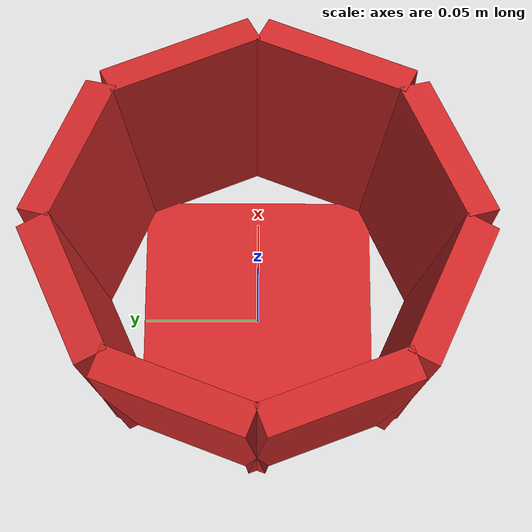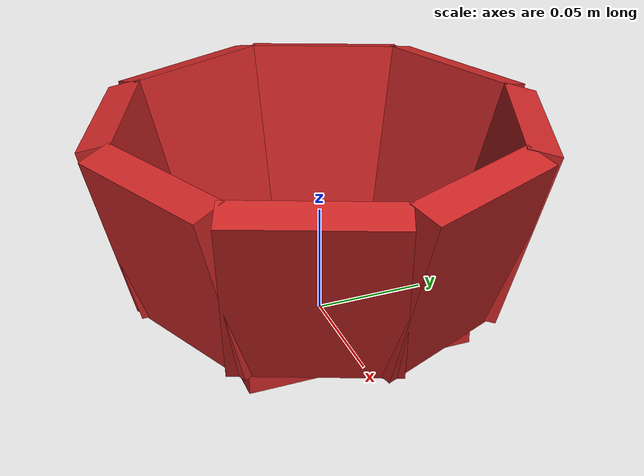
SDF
<?xml version="1.0" ?>
<sdf version="1.5">
  <model name="bowl_high">
    <link name="link">
      <inertial>
        <pose>0 0 0.035 0 0 0</pose>
        <mass>0.1</mass>
        <inertia>
          <ixx>0.000250308</ixx>
          <ixy>0.0</ixy>
          <ixz>0.0</ixz>
          <iyy>0.000250308</iyy>
          <iyz>0.0</iyz>
          <izz>0.0004802</izz>
        </inertia>
      </inertial>
      <collision name="side1">
        <pose>0.0301  0.07183 0.05588 -0.265282222222222 0 -0.3926875</pose>
        <geometry>
          <box><size>0.07 0.015 0.08</size></box>
        </geometry>
      </collision>
      <collision name="side2">
        <pose>-0.03 0.0717  0.05588 -0.265282 0 0.3926875</pose>
        <geometry>
          <box><size>0.07 0.015 0.08</size></box>
        </geometry>
      </collision>
      <collision name="side3">
        <pose>-0.0717 0.03  0.05588 -0.265282 0 1.1780625</pose>
        <geometry>
          <box><size>0.07 0.015 0.08</size></box>
        </geometry>
      </collision>
      <collision name="side4">
        <pose>-0.0717 -0.03 0.05588 -0.265282 0 1.9634375</pose>
        <geometry>
          <box><size>0.07 0.015 0.08</size></box>
        </geometry>
      </collision>
      <collision name="side5">
        <pose>-0.03 -0.0717 0.05588 -0.265282 0 2.7488125</pose>
        <geometry>
          <box><size>0.07 0.015 0.08</size></box>
        </geometry>
      </collision>
      <collision name="side6">
        <pose>0.03  -0.0717 0.05588 -0.265282 0 3.5516402</pose>
        <geometry>
          <box><size>0.07 0.015 0.08</size></box>
        </geometry>
      </collision>
      <collision name="side7">
        <pose>0.0717  -0.03 0.05588 -0.265282 0 4.3195625</pose>
        <geometry>
          <box><size>0.07 0.015 0.08</size></box>
        </geometry>
      </collision>
      <collision name="side8">
        <pose>0.0717  0.03  0.05588 -0.265282 0 5.1223902</pose>
        <geometry>
          <box><size>0.07 0.015 0.08</size></box>
        </geometry>
      </collision>
      <collision name="bottom">
        <pose>0  0  0.01 0 0 0</pose>
        <geometry>
          <box><size>0.1 0.1 0.02</size></box>
        </geometry>
      </collision>
      <visual name="side1">
        <pose>0.0301  0.07183 0.05588 -0.265282222222222 0 -0.3926875</pose>
        <geometry>
          <box><size>0.07 0.015 0.08</size></box>
        </geometry>
        <material>
          <script>
            <uri>file://media/materials/scripts/gazebo.material</uri>
            <name>Gazebo/Red</name>
          </script>
        </material>
      </visual>
      <visual name="side2">
        <pose>-0.03 0.0717  0.05588 -0.265282 0 0.3926875</pose>
        <geometry>
          <box><size>0.07 0.015 0.08</size></box>
        </geometry>
        <material>
          <script>
            <uri>file://media/materials/scripts/gazebo.material</uri>
            <name>Gazebo/Red</name>
          </script>
        </material>
      </visual>
      <visual name="side3">
        <pose>-0.0717 0.03  0.05588 -0.265282 0 1.1780625</pose>
        <geometry>
          <box><size>0.07 0.015 0.08</size></box>
        </geometry>
        <material>
          <script>
            <uri>file://media/materials/scripts/gazebo.material</uri>
            <name>Gazebo/Red</name>
          </script>
        </material>
      </visual>
      <visual name="side4">
        <pose>-0.0717 -0.03 0.05588 -0.265282 0 1.9634375</pose>
        <geometry>
          <box><size>0.07 0.015 0.08</size></box>
        </geometry>
        <material>
          <script>
            <uri>file://media/materials/scripts/gazebo.material</uri>
            <name>Gazebo/Red</name>
          </script>
        </material>
      </visual>
      <visual name="side5">
        <pose>-0.03 -0.0717 0.05588 -0.265282 0 2.7488125</pose>
        <geometry>
          <box><size>0.07 0.015 0.08</size></box>
        </geometry>
        <material>
          <script>
            <uri>file://media/materials/scripts/gazebo.material</uri>
            <name>Gazebo/Red</name>
          </script>
        </material>
      </visual>
      <visual name="side6">
        <pose>0.03  -0.0717 0.05588 -0.265282 0 3.5516402</pose>
        <geometry>
          <box><size>0.07 0.015 0.08</size></box>
        </geometry>
        <material>
          <script>
            <uri>file://media/materials/scripts/gazebo.material</uri>
            <name>Gazebo/Red</name>
          </script>
        </material>
      </visual>
      <visual name="side7">
        <pose>0.0717  -0.03 0.05588 -0.265282 0 4.3195625</pose>
        <geometry>
          <box><size>0.07 0.015 0.08</size></box>
        </geometry>
        <material>
          <script>
            <uri>file://media/materials/scripts/gazebo.material</uri>
            <name>Gazebo/Red</name>
          </script>
        </material>
      </visual>
      <visual name="side8">
        <pose>0.0717  0.03  0.05588 -0.265282 0 5.1223902</pose>
        <geometry>
          <box><size>0.07 0.015 0.08</size></box>
        </geometry>
        <material>
          <script>
            <uri>file://media/materials/scripts/gazebo.material</uri>
            <name>Gazebo/Red</name>
          </script>
        </material>
      </visual>
      <visual name="bottom">
        <pose>0  0  0.01 0 0 0</pose>
        <geometry>
          <box><size>0.1 0.1 0.02</size></box>
        </geometry>
        <material>
          <script>
            <uri>file://media/materials/scripts/gazebo.material</uri>
            <name>Gazebo/Red</name>
          </script>
        </material>
      </visual>

    </link>
  </model>
</sdf>
